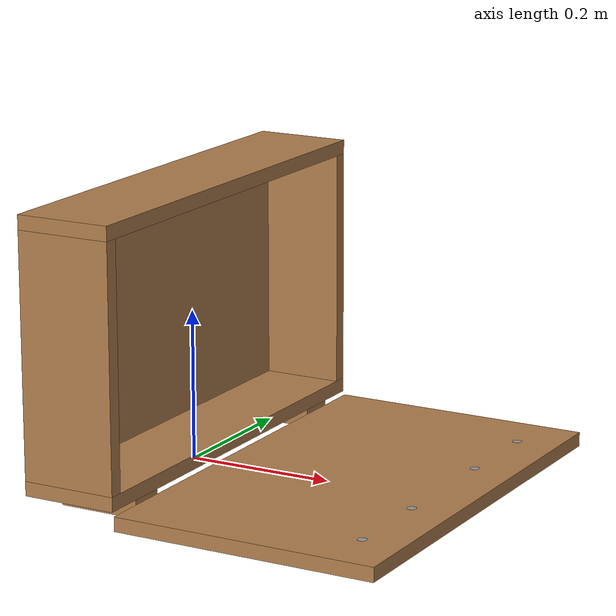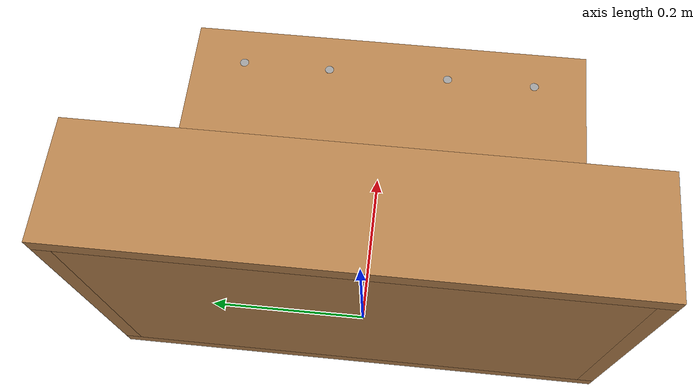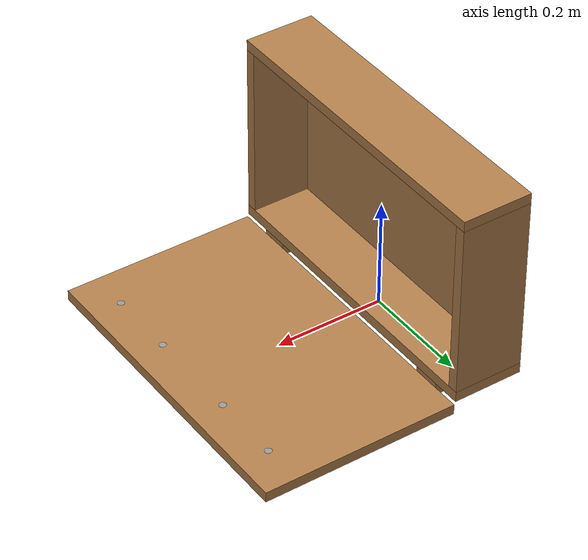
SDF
<?xml version="1.0" ?>

<sdf version="1.5">
  <model name="wooden_case">
    <link name="base">

      <pose>0 0 0.024  0 0 0</pose>
      <inertial>
        <pose>-0.02218446808213116 0.0 0.17159249678128843  0 0 0</pose>
        <mass>3.9626366887499986</mass>
        <inertia>
          <ixx>0.2135364168029657</ixx>
          <ixy>0.0</ixy>
          <ixz>0.0007793770806417083</ixz>
          <iyy>0.07089428398599372</iyy>
          <iyz>0.0</iyz>
          <izz>0.15460392299497075</izz>
        </inertia>
      </inertial>

      <collision name='collision_back'>
        <pose>-0.053975 0 0.17779999999999999  0 0 0</pose>
        <geometry>
          <box>
            <size>0.019049999999999997 0.5460999999999999 0.3175</size>
          </box>
        </geometry>
        <surface>
          <contact>
            <!-- Red Pine coefficients for longitudinal axis of the wood
                 according to:
                 http://www.fpl.fs.fed.us/documnts/fplgtr/fplgtr113/ch04.pdf -->
            <poissons_ratio>0.347</poissons_ratio>
            <elastic_modulus>8.8e+09</elastic_modulus>
            <ode>
              <kp>100000</kp>
              <kd>100</kd>
              <max_vel>100.0</max_vel>
              <min_depth>0.001</min_depth>
            </ode>
          </contact>
          <friction>
            <torsional>
              <coefficient>1.0</coefficient>
              <use_patch_radius>0</use_patch_radius>
              <surface_radius>0.01</surface_radius>
            </torsional>
          </friction>
        </surface>
      </collision>
      <visual name='visual_back'>
        <pose>-0.053975 0 0.17779999999999999  0 0 0</pose>
        <geometry>
          <box>
            <size>0.019049999999999997 0.5460999999999999 0.3175</size>
          </box>
        </geometry>
        <material>
          <script>
            <uri>file://media/materials/scripts/gazebo.material</uri>
            <name>Gazebo/Wood</name>
          </script>
        </material>
      </visual>

      <collision name='collision_bottom'>
        <pose>0 0 0.009524999999999999  0 0 0</pose>
        <geometry>
          <box>
            <size>0.127 0.5841999999999999 0.019049999999999997</size>
          </box>
        </geometry>
        <surface>
          <contact>
            <!-- Red Pine coefficients for longitudinal axis of the wood
                 according to:
                 http://www.fpl.fs.fed.us/documnts/fplgtr/fplgtr113/ch04.pdf -->
            <poissons_ratio>0.347</poissons_ratio>
            <elastic_modulus>8.8e+09</elastic_modulus>
            <ode>
              <kp>100000</kp>
              <kd>100</kd>
              <max_vel>100.0</max_vel>
              <min_depth>0.001</min_depth>
            </ode>
          </contact>
          <friction>
            <torsional>
              <coefficient>1.0</coefficient>
              <use_patch_radius>0</use_patch_radius>
              <surface_radius>0.01</surface_radius>
            </torsional>
          </friction>
        </surface>
      </collision>
      <visual name='visual_bottom'>
        <pose>0 0 0.009524999999999999  0 0 0</pose>
        <geometry>
          <box>
            <size>0.127 0.5841999999999999 0.019049999999999997</size>
          </box>
        </geometry>
        <material>
          <script>
            <uri>file://media/materials/scripts/gazebo.material</uri>
            <name>Gazebo/Wood</name>
          </script>
        </material>
      </visual>

      <collision name='collision_top'>
        <pose>0 0 0.34607499999999997  0 0 0</pose>
        <geometry>
          <box>
            <size>0.127 0.5841999999999999 0.019049999999999997</size>
          </box>
        </geometry>
        <surface>
          <contact>
            <!-- Red Pine coefficients for longitudinal axis of the wood
                 according to:
                 http://www.fpl.fs.fed.us/documnts/fplgtr/fplgtr113/ch04.pdf -->
            <poissons_ratio>0.347</poissons_ratio>
            <elastic_modulus>8.8e+09</elastic_modulus>
            <ode>
              <kp>100000</kp>
              <kd>100</kd>
              <max_vel>100.0</max_vel>
              <min_depth>0.001</min_depth>
            </ode>
          </contact>
          <friction>
            <torsional>
              <coefficient>1.0</coefficient>
              <use_patch_radius>0</use_patch_radius>
              <surface_radius>0.01</surface_radius>
            </torsional>
          </friction>
        </surface>
      </collision>
      <visual name='visual_top'>
        <pose>0 0 0.34607499999999997  0 0 0</pose>
        <geometry>
          <box>
            <size>0.127 0.5841999999999999 0.019049999999999997</size>
          </box>
        </geometry>
        <material>
          <script>
            <uri>file://media/materials/scripts/gazebo.material</uri>
            <name>Gazebo/Wood</name>
          </script>
        </material>
      </visual>

      <collision name='collision_left'>
        <pose>0 -0.28257499999999997 0.17779999999999999  0 0 0</pose>
        <geometry>
          <box>
            <size>0.127 0.019049999999999997 0.3175</size>
          </box>
        </geometry>
        <surface>
          <contact>
            <!-- Red Pine coefficients for longitudinal axis of the wood
                 according to:
                 http://www.fpl.fs.fed.us/documnts/fplgtr/fplgtr113/ch04.pdf -->
            <poissons_ratio>0.347</poissons_ratio>
            <elastic_modulus>8.8e+09</elastic_modulus>
            <ode>
              <kp>100000</kp>
              <kd>100</kd>
              <max_vel>100.0</max_vel>
              <min_depth>0.001</min_depth>
            </ode>
          </contact>
          <friction>
            <torsional>
              <coefficient>1.0</coefficient>
              <use_patch_radius>0</use_patch_radius>
              <surface_radius>0.01</surface_radius>
            </torsional>
          </friction>
        </surface>
      </collision>
      <visual name='visual_left'>
        <pose>0 -0.28257499999999997 0.17779999999999999  0 0 0</pose>
        <geometry>
          <box>
            <size>0.127 0.019049999999999997 0.3175</size>
          </box>
        </geometry>
        <material>
          <script>
            <uri>file://media/materials/scripts/gazebo.material</uri>
            <name>Gazebo/Wood</name>
          </script>
        </material>
      </visual>

      <collision name='collision_right'>
        <pose>0 0.28257499999999997 0.17779999999999999  0 0 0</pose>
        <geometry>
          <box>
            <size>0.127 0.019049999999999997 0.3175</size>
          </box>
        </geometry>
        <surface>
          <contact>
            <!-- Red Pine coefficients for longitudinal axis of the wood
                 according to:
                 http://www.fpl.fs.fed.us/documnts/fplgtr/fplgtr113/ch04.pdf -->
            <poissons_ratio>0.347</poissons_ratio>
            <elastic_modulus>8.8e+09</elastic_modulus>
            <ode>
              <kp>100000</kp>
              <kd>100</kd>
              <max_vel>100.0</max_vel>
              <min_depth>0.001</min_depth>
            </ode>
          </contact>
          <friction>
            <torsional>
              <coefficient>1.0</coefficient>
              <use_patch_radius>0</use_patch_radius>
              <surface_radius>0.01</surface_radius>
            </torsional>
          </friction>
        </surface>
      </collision>
      <visual name='visual_right'>
        <pose>0 0.28257499999999997 0.17779999999999999  0 0 0</pose>
        <geometry>
          <box>
            <size>0.127 0.019049999999999997 0.3175</size>
          </box>
        </geometry>
        <material>
          <script>
            <uri>file://media/materials/scripts/gazebo.material</uri>
            <name>Gazebo/Wood</name>
          </script>
        </material>
      </visual>

      <collision name='collision_block_left'>
        <pose>0.009500000000000001 -0.21509999999999996 -0.012  0 0 0</pose>
        <geometry>
          <box>
            <size>0.108 0.05 0.024</size>
          </box>
        </geometry>
        <surface>
          <contact>
            <!-- Red Pine coefficients for longitudinal axis of the wood
                 according to:
                 http://www.fpl.fs.fed.us/documnts/fplgtr/fplgtr113/ch04.pdf -->
            <poissons_ratio>0.347</poissons_ratio>
            <elastic_modulus>8.8e+09</elastic_modulus>
            <ode>
              <kp>100000</kp>
              <kd>100</kd>
              <max_vel>100.0</max_vel>
              <min_depth>0.001</min_depth>
            </ode>
          </contact>
          <friction>
            <torsional>
              <coefficient>1.0</coefficient>
              <use_patch_radius>0</use_patch_radius>
              <surface_radius>0.01</surface_radius>
            </torsional>
          </friction>
        </surface>
      </collision>
      <visual name='visual_block_left'>
        <pose>0.009500000000000001 -0.21509999999999996 -0.012  0 0 0</pose>
        <geometry>
          <box>
            <size>0.108 0.05 0.024</size>
          </box>
        </geometry>
        <material>
          <script>
            <uri>file://media/materials/scripts/gazebo.material</uri>
            <name>Gazebo/Wood</name>
          </script>
        </material>
      </visual>

      <collision name='collision_block_right'>
        <pose>0.009500000000000001 0.21509999999999996 -0.012  0 0 0</pose>
        <geometry>
          <box>
            <size>0.108 0.05 0.024</size>
          </box>
        </geometry>
        <surface>
          <contact>
            <!-- Red Pine coefficients for longitudinal axis of the wood
                 according to:
                 http://www.fpl.fs.fed.us/documnts/fplgtr/fplgtr113/ch04.pdf -->
            <poissons_ratio>0.347</poissons_ratio>
            <elastic_modulus>8.8e+09</elastic_modulus>
            <ode>
              <kp>100000</kp>
              <kd>100</kd>
              <max_vel>100.0</max_vel>
              <min_depth>0.001</min_depth>
            </ode>
          </contact>
          <friction>
            <torsional>
              <coefficient>1.0</coefficient>
              <use_patch_radius>0</use_patch_radius>
              <surface_radius>0.01</surface_radius>
            </torsional>
          </friction>
        </surface>
      </collision>
      <visual name='visual_block_right'>
        <pose>0.009500000000000001 0.21509999999999996 -0.012  0 0 0</pose>
        <geometry>
          <box>
            <size>0.108 0.05 0.024</size>
          </box>
        </geometry>
        <material>
          <script>
            <uri>file://media/materials/scripts/gazebo.material</uri>
            <name>Gazebo/Wood</name>
          </script>
        </material>
      </visual>

    </link>

    <link name="lid">

      <pose>0.24377499999999996 0 0.009524999999999999  0 0 0</pose>
      <inertial>
        <mass>1.9787379779999992</mass>
        <inertia>
          <ixx>0.05633673842708405</ixx>
          <ixy>0</ixy>
          <ixz>0</ixz>
          <iyy>0.020911016446734258</iyy>
          <iyz>0</iyz>
          <izz>0.07712807338064145</izz>
        </inertia>
      </inertial>
      <collision name='collision'>
        <geometry>
          <box>
            <size>0.35559999999999997 0.5841999999999999 0.019049999999999997</size>
          </box>
        </geometry>
        <surface>
          <contact>
            <!-- Red Pine coefficients for longitudinal axis of the wood
                 according to:
                 http://www.fpl.fs.fed.us/documnts/fplgtr/fplgtr113/ch04.pdf -->
            <poissons_ratio>0.347</poissons_ratio>
            <elastic_modulus>8.8e+09</elastic_modulus>
            <ode>
              <kp>100000</kp>
              <kd>100</kd>
              <max_vel>100.0</max_vel>
              <min_depth>0.001</min_depth>
            </ode>
          </contact>
          <friction>
            <torsional>
              <coefficient>1.0</coefficient>
              <use_patch_radius>0</use_patch_radius>
              <surface_radius>0.01</surface_radius>
            </torsional>
          </friction>
        </surface>
      </collision>
      <visual name='visual'>
        <geometry>
          <box>
            <size>0.35559999999999997 0.5841999999999999 0.019049999999999997</size>
          </box>
        </geometry>
        <material>
          <script>
            <uri>file://media/materials/scripts/gazebo.material</uri>
            <name>Gazebo/Wood</name>
          </script>
        </material>
      </visual>

      <visual name='tee_nut_1'>
        <pose>0.122 -0.216 0.0  0 0 0</pose>
        <geometry>
          <cylinder>
            <radius>0.00635</radius>
            <length>0.019240499999999997</length>
          </cylinder>
        </geometry>
        <material>
          <script>
            <uri>file://media/materials/scripts/gazebo.material</uri>
            <name>Gazebo/Grey</name>
          </script>
        </material>
      </visual>

      <visual name='tee_nut_2'>
        <pose>0.122 -0.088 0.0  0 0 0</pose>
        <geometry>
          <cylinder>
            <radius>0.00635</radius>
            <length>0.019240499999999997</length>
          </cylinder>
        </geometry>
        <material>
          <script>
            <uri>file://media/materials/scripts/gazebo.material</uri>
            <name>Gazebo/Grey</name>
          </script>
        </material>
      </visual>

      <visual name='tee_nut_3'>
        <pose>0.122 0.088 0.0  0 0 0</pose>
        <geometry>
          <cylinder>
            <radius>0.00635</radius>
            <length>0.019240499999999997</length>
          </cylinder>
        </geometry>
        <material>
          <script>
            <uri>file://media/materials/scripts/gazebo.material</uri>
            <name>Gazebo/Grey</name>
          </script>
        </material>
      </visual>

      <visual name='tee_nut_4'>
        <pose>0.122 0.216 0.0  0 0 0</pose>
        <geometry>
          <cylinder>
            <radius>0.00635</radius>
            <length>0.019240499999999997</length>
          </cylinder>
        </geometry>
        <material>
          <script>
            <uri>file://media/materials/scripts/gazebo.material</uri>
            <name>Gazebo/Grey</name>
          </script>
        </material>
      </visual>

    </link>

    <joint name="lid_hinge" type="revolute">
      <pose>-0.17779999999999999 0 0.019049999999999997  0 0 0</pose>
      <parent>base</parent>
      <child>lid</child>
      <axis>
        <xyz>0 1 0</xyz>
        <limit>
          <upper>0.5235987755982988</upper>
          <lower>-1.5707963267948966</lower>
        </limit>
      </axis>
    </joint>

  </model>
</sdf>
